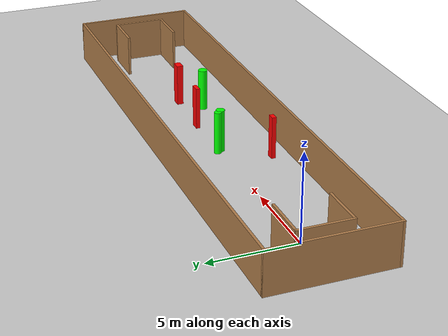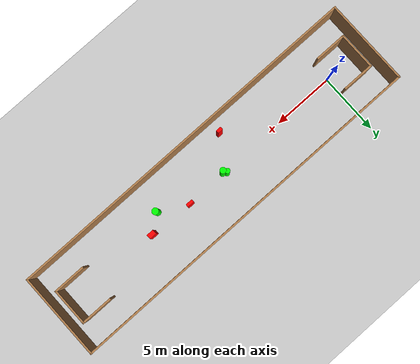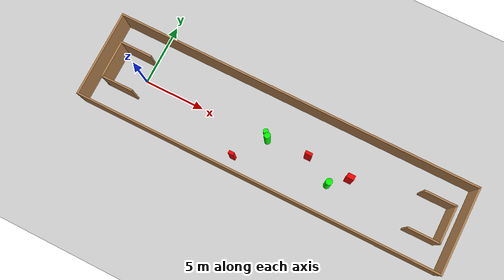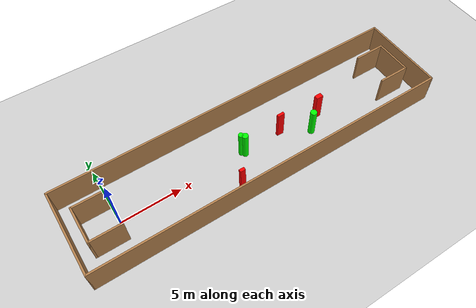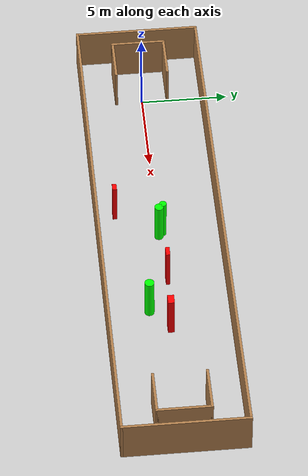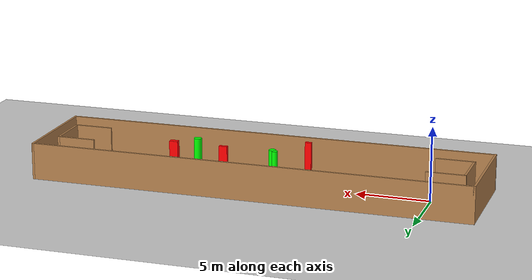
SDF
<sdf version="1.7">
 <world name="default">
  <light name="sun" type="directional">
   <pose>0 0 10 0 -0 0</pose>
   <diffuse>0.8 0.8 0.8 1</diffuse>
   <specular>0.2 0.2 0.2 1</specular>
   <attenuation>
    <range>1000</range>
    <constant>0.9</constant>
    <linear>0.01</linear>
    <quadratic>0.001</quadratic>
   </attenuation>
   <direction>-0.5 0.1 -0.9</direction>
   <spot><inner_angle>0</inner_angle><outer_angle>0</outer_angle><falloff>0</falloff></spot>
  </light>
  <model name="ground_plane">
   <static>1</static>
   <link name="link">
    <collision name="collision">
     <geometry><plane><normal>0 0 1</normal><size>100 100</size></plane></geometry>
     <surface>
      <contact><collide_bitmask>65535</collide_bitmask></contact>
      <friction><ode><mu>100</mu><mu2>50</mu2></ode></friction>
     </surface>
    </collision>
    <visual name="visual">
     <cast_shadows>0</cast_shadows>
     <geometry><plane><normal>0 0 1</normal><size>100 100</size></plane></geometry>
     <material>
      <script><uri>file://media/materials/scripts/gazebo.material</uri><name>Gazebo/Grey</name></script>
     </material>
    </visual>
   </link>
  </model>
  <gravity>0 0 -9.8</gravity>
  <magnetic_field>6e-06 2.3e-05 -4.2e-05</magnetic_field>
  <atmosphere type="adiabatic"/>
  <physics type="ode">
   <max_step_size>0.001</max_step_size>
   <real_time_factor>1</real_time_factor>
   <real_time_update_rate>1000</real_time_update_rate>
  </physics>
  <scene><ambient>0.4 0.4 0.4 1</ambient><background>0.7 0.7 0.7 1</background><shadows>1</shadows></scene>
  <spherical_coordinates>
   <surface_model>EARTH_WGS84</surface_model>
   <latitude_deg>0</latitude_deg>
   <longitude_deg>0</longitude_deg>
   <elevation>0</elevation>
   <heading_deg>0</heading_deg>
  </spherical_coordinates>
  <model name="my_base_walls">
   <link name="Wall_0">
    <collision name="Wall_0_Collision">
     <geometry><box><size>7.15 0.15 2.5</size></box></geometry>
     <pose>0 0 1.25 0 -0 0</pose>
    </collision>
    <visual name="Wall_0_Visual">
     <pose>0 0 1.25 0 -0 0</pose>
     <geometry><box><size>7.15 0.15 2.5</size></box></geometry>
     <material>
      <script><uri>file://media/materials/scripts/gazebo.material</uri><name>Gazebo/Wood</name></script>
      <ambient>1 1 1 1</ambient>
     </material>
     <meta><layer>0</layer></meta>
    </visual>
    <pose>-15 0 0 0 -0 1.5708</pose>
   </link>
   <link name="Wall_10">
    <collision name="Wall_10_Collision">
     <geometry><box><size>2.65 0.15 2.5</size></box></geometry>
     <pose>0 0 1.25 0 -0 0</pose>
    </collision>
    <visual name="Wall_10_Visual">
     <pose>0 0 1.25 0 -0 0</pose>
     <geometry><box><size>2.65 0.15 2.5</size></box></geometry>
     <material>
      <script><uri>file://media/materials/scripts/gazebo.material</uri><name>Gazebo/Wood</name></script>
      <ambient>1 1 1 1</ambient>
     </material>
     <meta><layer>0</layer></meta>
    </visual>
    <pose>-12.75 -1.5 0 0 -0 0</pose>
   </link>
   <link name="Wall_12">
    <collision name="Wall_12_Collision">
     <geometry><box><size>2.65 0.15 2.5</size></box></geometry>
     <pose>0 0 1.25 0 -0 0</pose>
    </collision>
    <visual name="Wall_12_Visual">
     <pose>0 0 1.25 0 -0 0</pose>
     <geometry><box><size>2.65 0.15 2.5</size></box></geometry>
     <material>
      <script><uri>file://media/materials/scripts/gazebo.material</uri><name>Gazebo/Wood</name></script>
      <ambient>1 1 1 1</ambient>
     </material>
     <meta><layer>0</layer></meta>
    </visual>
    <pose>-12.75 1.5 0 0 -0 0</pose>
   </link>
   <link name="Wall_14">
    <collision name="Wall_14_Collision">
     <geometry><box><size>3.15 0.15 2.5</size></box></geometry>
     <pose>0 0 1.25 0 -0 0</pose>
    </collision>
    <visual name="Wall_14_Visual">
     <pose>0 0 1.25 0 -0 0</pose>
     <geometry><box><size>3.15 0.15 2.5</size></box></geometry>
     <material>
      <script><uri>file://media/materials/scripts/gazebo.material</uri><name>Gazebo/Wood</name></script>
      <ambient>1 1 1 1</ambient>
     </material>
     <meta><layer>0</layer></meta>
    </visual>
    <pose>14 0 0 0 -0 -1.5708</pose>
   </link>
   <link name="Wall_15">
    <collision name="Wall_15_Collision">
     <geometry><box><size>2.65 0.15 2.5</size></box></geometry>
     <pose>0 0 1.25 0 -0 0</pose>
    </collision>
    <visual name="Wall_15_Visual">
     <pose>0 0 1.25 0 -0 0</pose>
     <geometry><box><size>2.65 0.15 2.5</size></box></geometry>
     <material>
      <script><uri>file://media/materials/scripts/gazebo.material</uri><name>Gazebo/Wood</name></script>
      <ambient>1 1 1 1</ambient>
     </material>
     <meta><layer>0</layer></meta>
    </visual>
    <pose>12.75 -1.5 0 0 -0 3.14159</pose>
   </link>
   <link name="Wall_17">
    <collision name="Wall_17_Collision">
     <geometry><box><size>2.65 0.15 2.5</size></box></geometry>
     <pose>0 0 1.25 0 -0 0</pose>
    </collision>
    <visual name="Wall_17_Visual">
     <pose>0 0 1.25 0 -0 0</pose>
     <geometry><box><size>2.65 0.15 2.5</size></box></geometry>
     <material>
      <script><uri>file://media/materials/scripts/gazebo.material</uri><name>Gazebo/Wood</name></script>
      <ambient>1 1 1 1</ambient>
     </material>
     <meta><layer>0</layer></meta>
    </visual>
    <pose>12.75 1.5 0 0 -0 3.14159</pose>
   </link>
   <link name="Wall_2">
    <collision name="Wall_2_Collision">
     <geometry><box><size>30.15 0.15 2.5</size></box></geometry>
     <pose>0 0 1.25 0 -0 0</pose>
    </collision>
    <visual name="Wall_2_Visual">
     <pose>0 0 1.25 0 -0 0</pose>
     <geometry><box><size>30.15 0.15 2.5</size></box></geometry>
     <material>
      <script><uri>file://media/materials/scripts/gazebo.material</uri><name>Gazebo/Wood</name></script>
      <ambient>1 1 1 1</ambient>
     </material>
     <meta><layer>0</layer></meta>
    </visual>
    <pose>-0 -3.5 0 0 -0 0</pose>
   </link>
   <link name="Wall_4">
    <collision name="Wall_4_Collision">
     <geometry><box><size>30.15 0.15 2.5</size></box></geometry>
     <pose>0 0 1.25 0 -0 0</pose>
    </collision>
    <visual name="Wall_4_Visual">
     <pose>0 0 1.25 0 -0 0</pose>
     <geometry><box><size>30.15 0.15 2.5</size></box></geometry>
     <material>
      <script><uri>file://media/materials/scripts/gazebo.material</uri><name>Gazebo/Wood</name></script>
      <ambient>1 1 1 1</ambient>
     </material>
     <meta><layer>0</layer></meta>
    </visual>
    <pose>-0 3.5 0 0 -0 0</pose>
   </link>
   <link name="Wall_6">
    <collision name="Wall_6_Collision">
     <geometry><box><size>7.15 0.15 2.5</size></box></geometry>
     <pose>0 0 1.25 0 -0 0</pose>
    </collision>
    <visual name="Wall_6_Visual">
     <pose>0 0 1.25 0 -0 0</pose>
     <geometry><box><size>7.15 0.15 2.5</size></box></geometry>
     <material>
      <script><uri>file://media/materials/scripts/gazebo.material</uri><name>Gazebo/Wood</name></script>
      <ambient>1 1 1 1</ambient>
     </material>
     <meta><layer>0</layer></meta>
    </visual>
    <pose>15 0 0 0 -0 -1.5708</pose>
   </link>
   <link name="Wall_9">
    <collision name="Wall_9_Collision">
     <geometry><box><size>3.15 0.15 2.5</size></box></geometry>
     <pose>0 0 1.25 0 -0 0</pose>
    </collision>
    <visual name="Wall_9_Visual">
     <pose>0 0 1.25 0 -0 0</pose>
     <geometry><box><size>3.15 0.15 2.5</size></box></geometry>
     <material>
      <script><uri>file://media/materials/scripts/gazebo.material</uri><name>Gazebo/Wood</name></script>
      <ambient>1 1 1 1</ambient>
     </material>
     <meta><layer>0</layer></meta>
    </visual>
    <pose>-14 0 0 0 -0 -1.5708</pose>
   </link>
   <static>1</static>
   <pose>11.5 0 0 0 -0 0</pose>
  </model>
  <model name="cylinder1">
   <static>1</static>
   <link name="link">
    <inertial>
     <mass>1</mass>
     <inertia><ixx>0.5</ixx><ixy>0</ixy><ixz>0</ixz><iyy>0.5</iyy><iyz>0</iyz><izz>1</izz></inertia>
    </inertial>
    <collision name="collision">
     <geometry><cylinder><radius>0.25162954252002145</radius><length>2.5</length></cylinder></geometry>
    </collision>
    <visual name="visual">
     <geometry><cylinder><radius>0.25162954252002145</radius><length>2.5</length></cylinder></geometry>
     <material>
      <ambient>0 1 0 1</ambient>
      <diffuse>0 1 0 1</diffuse>
      <specular>0.1 0.1 0.1 1</specular>
      <emissive>0 0 0 0</emissive>
     </material>
    </visual>
   </link>
   <pose>10.752609763349078 0.005180029120352536 1.25 0 0 0</pose>
  </model>
  <model name="cylinder2">
   <static>1</static>
   <link name="link">
    <inertial>
     <mass>1</mass>
     <inertia><ixx>0.5</ixx><ixy>0</ixy><ixz>0</ixz><iyy>0.5</iyy><iyz>0</iyz><izz>1</izz></inertia>
    </inertial>
    <collision name="collision">
     <geometry><cylinder><radius>0.2701585961389035</radius><length>2.5</length></cylinder></geometry>
    </collision>
    <visual name="visual">
     <geometry><cylinder><radius>0.2701585961389035</radius><length>2.5</length></cylinder></geometry>
     <material>
      <ambient>0 1 0 1</ambient>
      <diffuse>0 1 0 1</diffuse>
      <specular>0.1 0.1 0.1 1</specular>
      <emissive>0 0 0 0</emissive>
     </material>
    </visual>
   </link>
   <pose>16.3919844389116 -1.0570485326499357 1.25 0 0 0</pose>
  </model>
  <model name="cylinder3">
   <static>1</static>
   <link name="link">
    <inertial>
     <mass>1</mass>
     <inertia><ixx>0.5</ixx><ixy>0</ixy><ixz>0</ixz><iyy>0.5</iyy><iyz>0</iyz><izz>1</izz></inertia>
    </inertial>
    <collision name="collision">
     <geometry><cylinder><radius>0.2031214250444682</radius><length>2.5</length></cylinder></geometry>
    </collision>
    <visual name="visual">
     <geometry><cylinder><radius>0.2031214250444682</radius><length>2.5</length></cylinder></geometry>
     <material>
      <ambient>0 1 0 1</ambient>
      <diffuse>0 1 0 1</diffuse>
      <specular>0.1 0.1 0.1 1</specular>
      <emissive>0 0 0 0</emissive>
     </material>
    </visual>
   </link>
   <pose>10.520587862067856 0.24323450442499617 1.25 0 0 0</pose>
  </model>
  <model name="box1">
   <static>1</static>
   <link name="link">
    <inertial>
     <mass>1</mass>
     <inertia><ixx>0.083</ixx><ixy>0</ixy><ixz>0</ixz><iyy>0.083</iyy><iyz>0</iyz><izz>0.083</izz></inertia>
    </inertial>
    <collision name="collision">
     <geometry><box><size>0.4312807637722965 0.2501588105385748 2.5</size></box></geometry>
    </collision>
    <visual name="visual">
     <geometry><box><size>0.4312807637722965 0.2501588105385748 2.5</size></box></geometry>
     <material>
      <ambient>1 0 0 1</ambient>
      <diffuse>1 0 0 1</diffuse>
      <specular>0.1 0.1 0.1 1</specular>
      <emissive>0 0 0 0</emissive>
     </material>
    </visual>
    <sensor name="my_contact" type="contact">
     <contact><collision>box_collision</collision><topic>__default_topic__</topic></contact>
    </sensor>
   </link>
   <pose>8.965880531664384 -2.375986554797187 1.25 0 0 0</pose>
  </model>
  <model name="box2">
   <static>1</static>
   <link name="link">
    <inertial>
     <mass>1</mass>
     <inertia><ixx>0.083</ixx><ixy>0</ixy><ixz>0</ixz><iyy>0.083</iyy><iyz>0</iyz><izz>0.083</izz></inertia>
    </inertial>
    <collision name="collision">
     <geometry><box><size>0.5745201232352658 0.2344675477352986 2.5</size></box></geometry>
    </collision>
    <visual name="visual">
     <geometry><box><size>0.5745201232352658 0.2344675477352986 2.5</size></box></geometry>
     <material>
      <ambient>1 0 0 1</ambient>
      <diffuse>1 0 0 1</diffuse>
      <specular>0.1 0.1 0.1 1</specular>
      <emissive>0 0 0 0</emissive>
     </material>
    </visual>
    <sensor name="my_contact" type="contact">
     <contact><collision>box_collision</collision><topic>__default_topic__</topic></contact>
    </sensor>
   </link>
   <pose>14.135945846677297 0.1771222535573047 1.25 0 0 0</pose>
  </model>
  <model name="box3">
   <static>1</static>
   <link name="link">
    <inertial>
     <mass>1</mass>
     <inertia><ixx>0.083</ixx><ixy>0</ixy><ixz>0</ixz><iyy>0.083</iyy><iyz>0</iyz><izz>0.083</izz></inertia>
    </inertial>
    <collision name="collision">
     <geometry><box><size>0.5842717844505891 0.368519381678877 2.5</size></box></geometry>
    </collision>
    <visual name="visual">
     <geometry><box><size>0.5842717844505891 0.368519381678877 2.5</size></box></geometry>
     <material>
      <ambient>1 0 0 1</ambient>
      <diffuse>1 0 0 1</diffuse>
      <specular>0.1 0.1 0.1 1</specular>
      <emissive>0 0 0 0</emissive>
     </material>
    </visual>
    <sensor name="my_contact" type="contact">
     <contact><collision>box_collision</collision><topic>__default_topic__</topic></contact>
    </sensor>
   </link>
   <pose>17.696186426056094 0.01676202741439914 1.25 0 0 0</pose>
  </model>
 </world>
</sdf>
